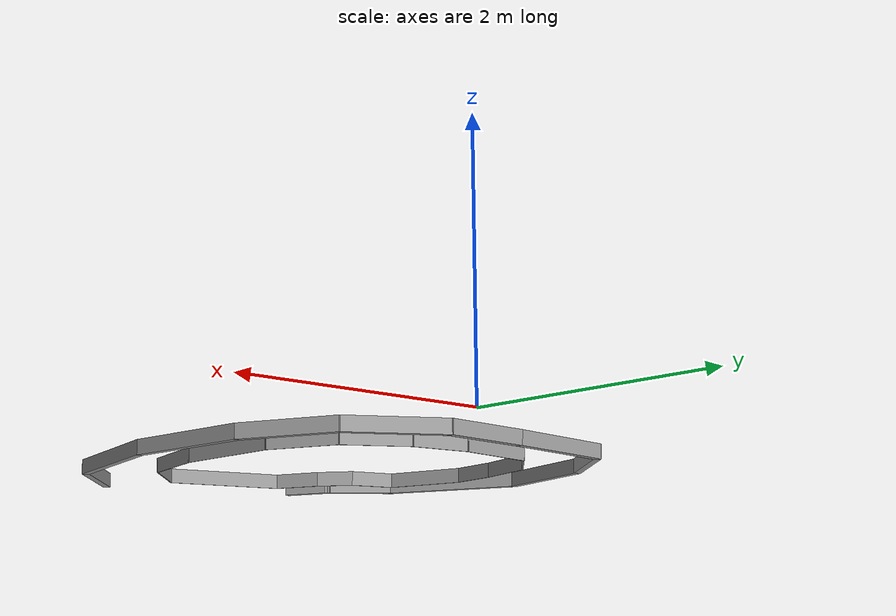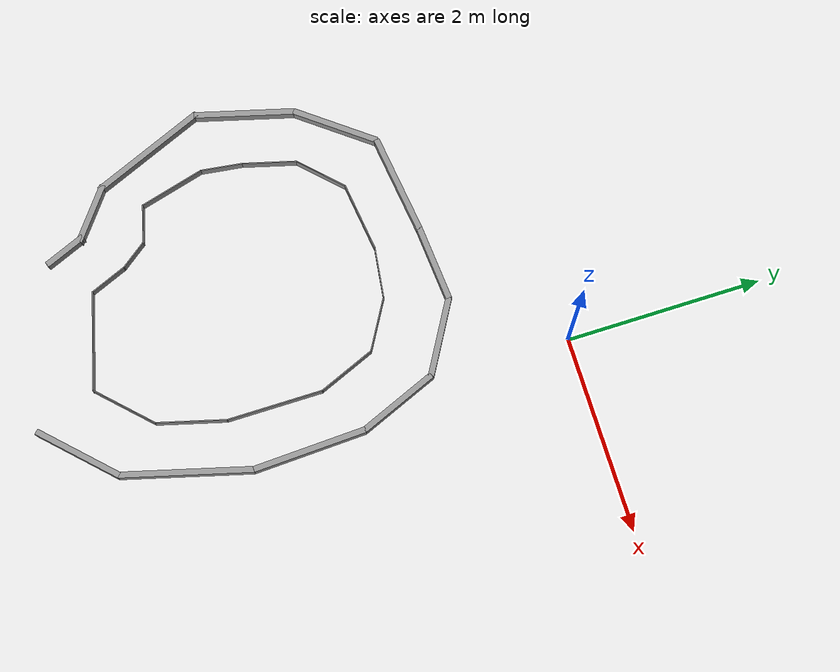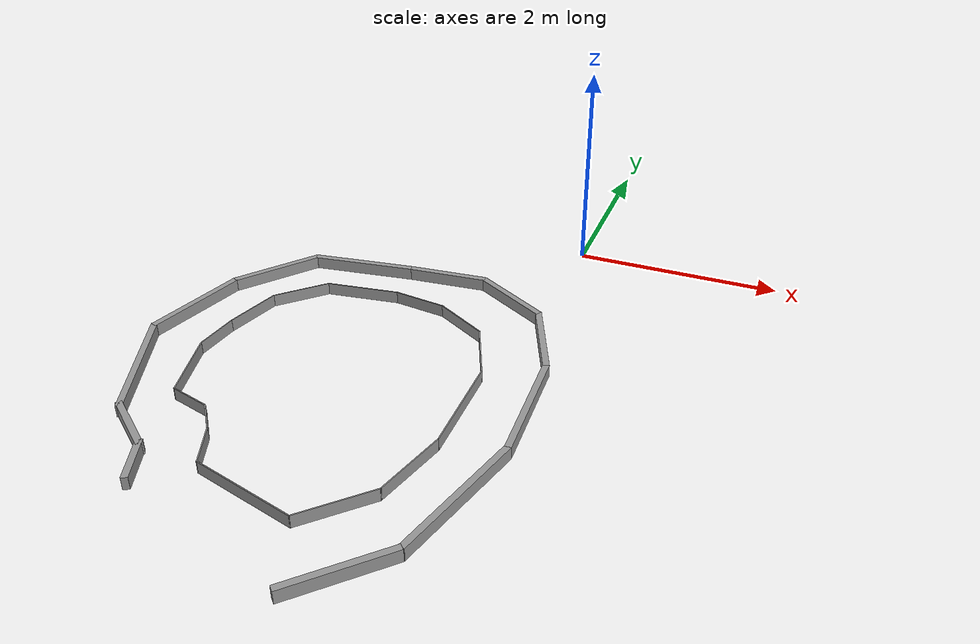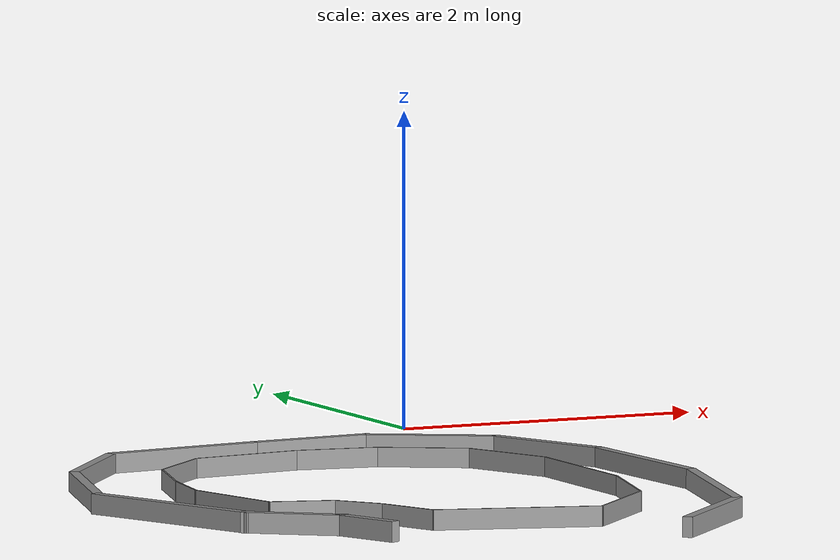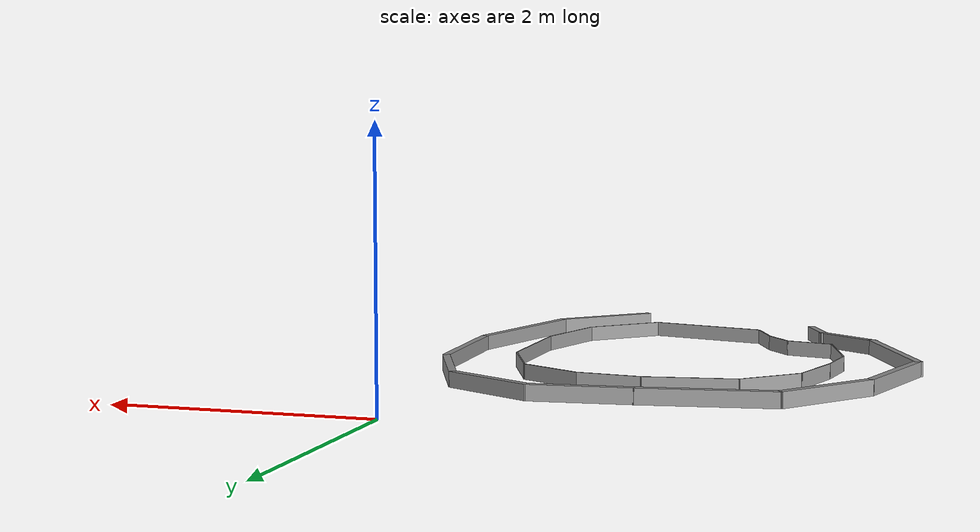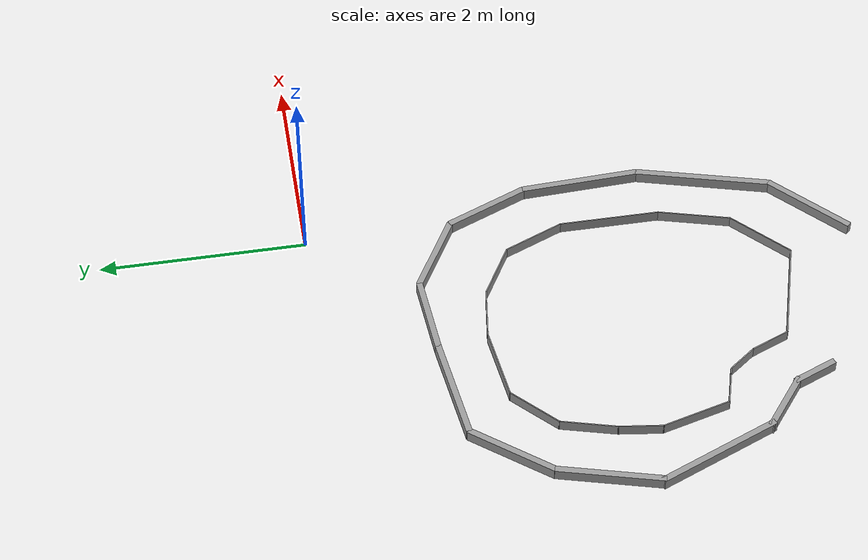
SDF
<?xml version='1.0'?>
<sdf version='1.4'>
  <model name='thymio_maze'>
    <link name='Wall_0'>
      <collision name='Wall_0_Collision'>
        <geometry>
          <box>
            <size>0.929348 0.06 0.12</size>
          </box>
        </geometry>
        <pose>0 0 0.06 0 -0 0</pose>
      </collision>
      <visual name='Wall_0_Visual'>
        <pose>0 0 0.06 0 -0 0</pose>
        <geometry>
          <box>
            <size>0.929348 0.06 0.12</size>
          </box>
        </geometry>
        <material>
          <script>
            <uri>file://media/materials/scripts/gazebo.material</uri>
            <name>Gazebo/Grey</name>
          </script>
        </material>
      </visual>
      <velocity_decay>
        <linear>0</linear>
        <angular>0</angular>
      </velocity_decay>
      <pose>-0.334962 -4.92496 0 0 -0 0.785398</pose>
    </link>
    <link name='Wall_1'>
      <collision name='Wall_1_Collision'>
        <geometry>
          <box>
            <size>1.32208 0.06 0.12</size>
          </box>
        </geometry>
        <pose>0 0 0.06 0 -0 0</pose>
      </collision>
      <visual name='Wall_1_Visual'>
        <pose>0 0 0.06 0 -0 0</pose>
        <geometry>
          <box>
            <size>1.32208 0.06 0.12</size>
          </box>
        </geometry>
        <material>
          <script>
            <uri>file://media/materials/scripts/gazebo.material</uri>
            <name>Gazebo/Grey</name>
          </script>
        </material>
      </visual>
      <velocity_decay>
        <linear>0</linear>
        <angular>0</angular>
      </velocity_decay>
      <pose>0.159873 -3.96624 0 0 -0 1.309</pose>
    </link>
    <link name='Wall_10'>
      <collision name='Wall_10_Collision'>
        <geometry>
          <box>
            <size>0.623976 0.06 0.12</size>
          </box>
        </geometry>
        <pose>0 0 0.06 0 -0 0</pose>
      </collision>
      <visual name='Wall_10_Visual'>
        <pose>0 0 0.06 0 -0 0</pose>
        <geometry>
          <box>
            <size>0.623976 0.06 0.12</size>
          </box>
        </geometry>
        <material>
          <script>
            <uri>file://media/materials/scripts/gazebo.material</uri>
            <name>Gazebo/Grey</name>
          </script>
        </material>
      </visual>
      <velocity_decay>
        <linear>0</linear>
        <angular>0</angular>
      </velocity_decay>
      <pose>-2.64026 -4.15809 0 0 0 -0.654498</pose>
    </link>
    <link name='Wall_11'>
      <collision name='Wall_11_Collision'>
        <geometry>
          <box>
            <size>0.448262 0.06 0.12</size>
          </box>
        </geometry>
        <pose>0 0 0.06 0 -0 0</pose>
      </collision>
      <visual name='Wall_11_Visual'>
        <pose>0 0 0.06 0 -0 0</pose>
        <geometry>
          <box>
            <size>0.448262 0.06 0.12</size>
          </box>
        </geometry>
        <material>
          <script>
            <uri>file://media/materials/scripts/gazebo.material</uri>
            <name>Gazebo/Grey</name>
          </script>
        </material>
      </visual>
      <velocity_decay>
        <linear>0</linear>
        <angular>0</angular>
      </velocity_decay>
      <pose>-2.34264 -4.50881 0 0 0 -1.1781</pose>
    </link>
    <link name='Wall_2'>
      <collision name='Wall_2_Collision'>
        <geometry>
          <box>
            <size>1.15363 0.06 0.12</size>
          </box>
        </geometry>
        <pose>0 0 0.06 0 -0 0</pose>
      </collision>
      <visual name='Wall_2_Visual'>
        <pose>0 0 0.06 0 -0 0</pose>
        <geometry>
          <box>
            <size>1.15363 0.06 0.12</size>
          </box>
        </geometry>
        <material>
          <script>
            <uri>file://media/materials/scripts/gazebo.material</uri>
            <name>Gazebo/Grey</name>
          </script>
        </material>
      </visual>
      <velocity_decay>
        <linear>0</linear>
        <angular>0</angular>
      </velocity_decay>
      <pose>0.304834 -2.76128 0 0 -0 1.61424</pose>
    </link>
    <link name='Wall_3'>
      <collision name='Wall_3_Collision'>
        <geometry>
          <box>
            <size>0.850952 0.06 0.12</size>
          </box>
        </geometry>
        <pose>0 0 0.06 0 -0 0</pose>
      </collision>
      <visual name='Wall_3_Visual'>
        <pose>0 0 0.06 0 -0 0</pose>
        <geometry>
          <box>
            <size>0.850952 0.06 0.12</size>
          </box>
        </geometry>
        <material>
          <script>
            <uri>file://media/materials/scripts/gazebo.material</uri>
            <name>Gazebo/Grey</name>
          </script>
        </material>
      </visual>
      <velocity_decay>
        <linear>0</linear>
        <angular>0</angular>
      </velocity_decay>
      <pose>0.119091 -1.80153 0 0 -0 1.96349</pose>
    </link>
    <link name='Wall_4'>
      <collision name='Wall_4_Collision'>
        <geometry>
          <box>
            <size>0.814735 0.06 0.12</size>
          </box>
        </geometry>
        <pose>0 0 0.06 0 -0 0</pose>
      </collision>
      <visual name='Wall_4_Visual'>
        <pose>0 0 0.06 0 -0 0</pose>
        <geometry>
          <box>
            <size>0.814735 0.06 0.12</size>
          </box>
        </geometry>
        <material>
          <script>
            <uri>file://media/materials/scripts/gazebo.material</uri>
            <name>Gazebo/Grey</name>
          </script>
        </material>
      </visual>
      <velocity_decay>
        <linear>0</linear>
        <angular>0</angular>
      </velocity_decay>
      <pose>-0.390279 -1.21188 0 0 -0 2.61799</pose>
    </link>
    <link name='Wall_42'>
      <collision name='Wall_42_Collision'>
        <geometry>
          <box>
            <size>0.707835 0.01 0.12</size>
          </box>
        </geometry>
        <pose>0 0 0.06 0 -0 0</pose>
      </collision>
      <visual name='Wall_42_Visual'>
        <pose>0 0 0.06 0 -0 0</pose>
        <geometry>
          <box>
            <size>0.707835 0.01 0.12</size>
          </box>
        </geometry>
        <material>
          <script>
            <uri>file://media/materials/scripts/gazebo.material</uri>
            <name>Gazebo/Grey</name>
          </script>
        </material>
      </visual>
      <velocity_decay>
        <linear>0</linear>
        <angular>0</angular>
      </velocity_decay>
      <pose>-0.645664 -4.37014 0 0 -0 0.785398</pose>
    </link>
    <link name='Wall_43'>
      <collision name='Wall_43_Collision'>
        <geometry>
          <box>
            <size>0.713337 0.01 0.12</size>
          </box>
        </geometry>
        <pose>0 0 0.06 0 -0 0</pose>
      </collision>
      <visual name='Wall_43_Visual'>
        <pose>0 0 0.06 0 -0 0</pose>
        <geometry>
          <box>
            <size>0.713337 0.01 0.12</size>
          </box>
        </geometry>
        <material>
          <script>
            <uri>file://media/materials/scripts/gazebo.material</uri>
            <name>Gazebo/Grey</name>
          </script>
        </material>
      </visual>
      <velocity_decay>
        <linear>0</linear>
        <angular>0</angular>
      </velocity_decay>
      <pose>-0.307923 -3.78373 0 0 -0 1.309</pose>
    </link>
    <link name='Wall_44'>
      <collision name='Wall_44_Collision'>
        <geometry>
          <box>
            <size>0.979475 0.01 0.12</size>
          </box>
        </geometry>
        <pose>0 0 0.06 0 -0 0</pose>
      </collision>
      <visual name='Wall_44_Visual'>
        <pose>0 0 0.06 0 -0 0</pose>
        <geometry>
          <box>
            <size>0.979475 0.01 0.12</size>
          </box>
        </geometry>
        <material>
          <script>
            <uri>file://media/materials/scripts/gazebo.material</uri>
            <name>Gazebo/Grey</name>
          </script>
        </material>
      </visual>
      <velocity_decay>
        <linear>0</linear>
        <angular>0</angular>
      </velocity_decay>
      <pose>-0.216905 -2.95931 0 0 -0 1.5708</pose>
    </link>
    <link name='Wall_45'>
      <collision name='Wall_45_Collision'>
        <geometry>
          <box>
            <size>0.627101 0.01 0.12</size>
          </box>
        </geometry>
        <pose>0 0 0.06 0 -0 0</pose>
      </collision>
      <visual name='Wall_45_Visual'>
        <pose>0 0 0.06 0 -0 0</pose>
        <geometry>
          <box>
            <size>0.627101 0.01 0.12</size>
          </box>
        </geometry>
        <material>
          <script>
            <uri>file://media/materials/scripts/gazebo.material</uri>
            <name>Gazebo/Grey</name>
          </script>
        </material>
      </visual>
      <velocity_decay>
        <linear>0</linear>
        <angular>0</angular>
      </velocity_decay>
      <pose>-0.334982 -2.18951 0 0 -0 1.96349</pose>
    </link>
    <link name='Wall_46'>
      <collision name='Wall_46_Collision'>
        <geometry>
          <box>
            <size>0.570732 0.01 0.12</size>
          </box>
        </geometry>
        <pose>0 0 0.06 0 -0 0</pose>
      </collision>
      <visual name='Wall_46_Visual'>
        <pose>0 0 0.06 0 -0 0</pose>
        <geometry>
          <box>
            <size>0.570732 0.01 0.12</size>
          </box>
        </geometry>
        <material>
          <script>
            <uri>file://media/materials/scripts/gazebo.material</uri>
            <name>Gazebo/Grey</name>
          </script>
        </material>
      </visual>
      <velocity_decay>
        <linear>0</linear>
        <angular>0</angular>
      </velocity_decay>
      <pose>-0.695863 -1.76426 0 0 -0 2.61799</pose>
    </link>
    <link name='Wall_47'>
      <collision name='Wall_47_Collision'>
        <geometry>
          <box>
            <size>0.521415 0.01 0.12</size>
          </box>
        </geometry>
        <pose>0 0 0.06 0 -0 0</pose>
      </collision>
      <visual name='Wall_47_Visual'>
        <pose>0 0 0.06 0 -0 0</pose>
        <geometry>
          <box>
            <size>0.521415 0.01 0.12</size>
          </box>
        </geometry>
        <material>
          <script>
            <uri>file://media/materials/scripts/gazebo.material</uri>
            <name>Gazebo/Grey</name>
          </script>
        </material>
      </visual>
      <velocity_decay>
        <linear>0</linear>
        <angular>0</angular>
      </velocity_decay>
      <pose>-1.19219 -1.5907 0 0 -0 3.01069</pose>
    </link>
    <link name='Wall_48'>
      <collision name='Wall_48_Collision'>
        <geometry>
          <box>
            <size>0.720722 0.01 0.12</size>
          </box>
        </geometry>
        <pose>0 0 0.06 0 -0 0</pose>
      </collision>
      <visual name='Wall_48_Visual'>
        <pose>0 0 0.06 0 -0 0</pose>
        <geometry>
          <box>
            <size>0.720722 0.01 0.12</size>
          </box>
        </geometry>
        <material>
          <script>
            <uri>file://media/materials/scripts/gazebo.material</uri>
            <name>Gazebo/Grey</name>
          </script>
        </material>
      </visual>
      <velocity_decay>
        <linear>0</linear>
        <angular>0</angular>
      </velocity_decay>
      <pose>-1.79833 -1.60374 0 0 0 -3.01069</pose>
    </link>
    <link name='Wall_49'>
      <collision name='Wall_49_Collision'>
        <geometry>
          <box>
            <size>0.56681 0.01 0.12</size>
          </box>
        </geometry>
        <pose>0 0 0.06 0 -0 0</pose>
      </collision>
      <visual name='Wall_49_Visual'>
        <pose>0 0 0.06 0 -0 0</pose>
        <geometry>
          <box>
            <size>0.56681 0.01 0.12</size>
          </box>
        </geometry>
        <material>
          <script>
            <uri>file://media/materials/scripts/gazebo.material</uri>
            <name>Gazebo/Grey</name>
          </script>
        </material>
      </visual>
      <velocity_decay>
        <linear>0</linear>
        <angular>0</angular>
      </velocity_decay>
      <pose>-2.34781 -1.84703 0 0 0 -2.35619</pose>
    </link>
    <link name='Wall_5'>
      <collision name='Wall_5_Collision'>
        <geometry>
          <box>
            <size>0.779264 0.06 0.12</size>
          </box>
        </geometry>
        <pose>0 0 0.06 0 -0 0</pose>
      </collision>
      <visual name='Wall_5_Visual'>
        <pose>0 0 0.06 0 -0 0</pose>
        <geometry>
          <box>
            <size>0.779264 0.06 0.12</size>
          </box>
        </geometry>
        <material>
          <script>
            <uri>file://media/materials/scripts/gazebo.material</uri>
            <name>Gazebo/Grey</name>
          </script>
        </material>
      </visual>
      <velocity_decay>
        <linear>0</linear>
        <angular>0</angular>
      </velocity_decay>
      <pose>-1.12207 -1.04224 0 0 0 -3.05947</pose>
    </link>
    <link name='Wall_50'>
      <collision name='Wall_50_Collision'>
        <geometry>
          <box>
            <size>0.555621 0.01 0.12</size>
          </box>
        </geometry>
        <pose>0 0 0.06 0 -0 0</pose>
      </collision>
      <visual name='Wall_50_Visual'>
        <pose>0 0 0.06 0 -0 0</pose>
        <geometry>
          <box>
            <size>0.555621 0.01 0.12</size>
          </box>
        </geometry>
        <material>
          <script>
            <uri>file://media/materials/scripts/gazebo.material</uri>
            <name>Gazebo/Grey</name>
          </script>
        </material>
      </visual>
      <velocity_decay>
        <linear>0</linear>
        <angular>0</angular>
      </velocity_decay>
      <pose>-2.61528 -2.30741 0 0 0 -1.8326</pose>
    </link>
    <link name='Wall_51'>
      <collision name='Wall_51_Collision'>
        <geometry>
          <box>
            <size>0.429008 0.01 0.12</size>
          </box>
        </geometry>
        <pose>0 0 0.06 0 -0 0</pose>
      </collision>
      <visual name='Wall_51_Visual'>
        <pose>0 0 0.06 0 -0 0</pose>
        <geometry>
          <box>
            <size>0.429008 0.01 0.12</size>
          </box>
        </geometry>
        <material>
          <script>
            <uri>file://media/materials/scripts/gazebo.material</uri>
            <name>Gazebo/Grey</name>
          </script>
        </material>
      </visual>
      <velocity_decay>
        <linear>0</linear>
        <angular>0</angular>
      </velocity_decay>
      <pose>-2.71323 -2.77863 0 0 0 -1.7017</pose>
    </link>
    <link name='Wall_52'>
      <collision name='Wall_52_Collision'>
        <geometry>
          <box>
            <size>0.690455 0.01 0.12</size>
          </box>
        </geometry>
        <pose>0 0 0.06 0 -0 0</pose>
      </collision>
      <visual name='Wall_52_Visual'>
        <pose>0 0 0.06 0 -0 0</pose>
        <geometry>
          <box>
            <size>0.690455 0.01 0.12</size>
          </box>
        </geometry>
        <material>
          <script>
            <uri>file://media/materials/scripts/gazebo.material</uri>
            <name>Gazebo/Grey</name>
          </script>
        </material>
      </visual>
      <velocity_decay>
        <linear>0</linear>
        <angular>0</angular>
      </velocity_decay>
      <pose>-2.65252 -3.31498 0 0 0 -1.309</pose>
    </link>
    <link name='Wall_53'>
      <collision name='Wall_53_Collision'>
        <geometry>
          <box>
            <size>0.396296 0.01 0.12</size>
          </box>
        </geometry>
        <pose>0 0 0.06 0 -0 0</pose>
      </collision>
      <visual name='Wall_53_Visual'>
        <pose>0 0 0.06 0 -0 0</pose>
        <geometry>
          <box>
            <size>0.396296 0.01 0.12</size>
          </box>
        </geometry>
        <material>
          <script>
            <uri>file://media/materials/scripts/gazebo.material</uri>
            <name>Gazebo/Grey</name>
          </script>
        </material>
      </visual>
      <velocity_decay>
        <linear>0</linear>
        <angular>0</angular>
      </velocity_decay>
      <pose>-2.3779 -3.6936 0 0 0 -0.261799</pose>
    </link>
    <link name='Wall_54'>
      <collision name='Wall_54_Collision'>
        <geometry>
          <box>
            <size>0.322851 0.01 0.12</size>
          </box>
        </geometry>
        <pose>0 0 0.06 0 -0 0</pose>
      </collision>
      <visual name='Wall_54_Visual'>
        <pose>0 0 0.06 0 -0 0</pose>
        <geometry>
          <box>
            <size>0.322851 0.01 0.12</size>
          </box>
        </geometry>
        <material>
          <script>
            <uri>file://media/materials/scripts/gazebo.material</uri>
            <name>Gazebo/Grey</name>
          </script>
        </material>
      </visual>
      <velocity_decay>
        <linear>0</linear>
        <angular>0</angular>
      </velocity_decay>
      <pose>-2.09743 -3.86814 0 0 0 -0.924784</pose>
    </link>
    <link name='Wall_55'>
      <collision name='Wall_55_Collision'>
        <geometry>
          <box>
            <size>0.407454 0.01 0.12</size>
          </box>
        </geometry>
        <pose>0 0 0.06 0 -0 0</pose>
      </collision>
      <visual name='Wall_55_Visual'>
        <pose>0 0 0.06 0 -0 0</pose>
        <geometry>
          <box>
            <size>0.407454 0.01 0.12</size>
          </box>
        </geometry>
        <material>
          <script>
            <uri>file://media/materials/scripts/gazebo.material</uri>
            <name>Gazebo/Grey</name>
          </script>
        </material>
      </visual>
      <velocity_decay>
        <linear>0</linear>
        <angular>0</angular>
      </velocity_decay>
      <pose>-1.92749 -4.17628 0 0 0 -1.1781</pose>
    </link>
    <link name='Wall_56'>
      <collision name='Wall_56_Collision'>
        <geometry>
          <box>
            <size>1.00289 0.01 0.12</size>
          </box>
        </geometry>
        <pose>0 0 0.06 0 -0 0</pose>
      </collision>
      <visual name='Wall_56_Visual'>
        <pose>0 0 0.06 0 -0 0</pose>
        <geometry>
          <box>
            <size>1.00289 0.01 0.12</size>
          </box>
        </geometry>
        <material>
          <script>
            <uri>file://media/materials/scripts/gazebo.material</uri>
            <name>Gazebo/Grey</name>
          </script>
        </material>
      </visual>
      <velocity_decay>
        <linear>0</linear>
        <angular>0</angular>
      </velocity_decay>
      <pose>-1.37191 -4.48837 0 0 0 -0.261799</pose>
    </link>
    <link name='Wall_6'>
      <collision name='Wall_6_Collision'>
        <geometry>
          <box>
            <size>1.03014 0.06 0.12</size>
          </box>
        </geometry>
        <pose>0 0 0.06 0 -0 0</pose>
      </collision>
      <visual name='Wall_6_Visual'>
        <pose>0 0 0.06 0 -0 0</pose>
        <geometry>
          <box>
            <size>1.03014 0.06 0.12</size>
          </box>
        </geometry>
        <material>
          <script>
            <uri>file://media/materials/scripts/gazebo.material</uri>
            <name>Gazebo/Grey</name>
          </script>
        </material>
      </visual>
      <velocity_decay>
        <linear>0</linear>
        <angular>0</angular>
      </velocity_decay>
      <pose>-2.01158 -1.14043 0 0 0 -3.01069</pose>
    </link>
    <link name='Wall_7'>
      <collision name='Wall_7_Collision'>
        <geometry>
          <box>
            <size>0.90175 0.06 0.12</size>
          </box>
        </geometry>
        <pose>0 0 0.06 0 -0 0</pose>
      </collision>
      <visual name='Wall_7_Visual'>
        <pose>0 0 0.06 0 -0 0</pose>
        <geometry>
          <box>
            <size>0.90175 0.06 0.12</size>
          </box>
        </geometry>
        <material>
          <script>
            <uri>file://media/materials/scripts/gazebo.material</uri>
            <name>Gazebo/Grey</name>
          </script>
        </material>
      </visual>
      <velocity_decay>
        <linear>0</linear>
        <angular>0</angular>
      </velocity_decay>
      <pose>-2.78918 -1.56081 0 0 0 -2.2253</pose>
    </link>
    <link name='Wall_8'>
      <collision name='Wall_8_Collision'>
        <geometry>
          <box>
            <size>1.02039 0.06 0.12</size>
          </box>
        </geometry>
        <pose>0 0 0.06 0 -0 0</pose>
      </collision>
      <visual name='Wall_8_Visual'>
        <pose>0 0 0.06 0 -0 0</pose>
        <geometry>
          <box>
            <size>1.02039 0.06 0.12</size>
          </box>
        </geometry>
        <material>
          <script>
            <uri>file://media/materials/scripts/gazebo.material</uri>
            <name>Gazebo/Grey</name>
          </script>
        </material>
      </visual>
      <velocity_decay>
        <linear>0</linear>
        <angular>0</angular>
      </velocity_decay>
      <pose>-3.19137 -2.40253 0 0 0 -1.8326</pose>
    </link>
    <link name='Wall_9'>
      <collision name='Wall_9_Collision'>
        <geometry>
          <box>
            <size>1.24741 0.06 0.12</size>
          </box>
        </geometry>
        <pose>0 0 0.06 0 -0 0</pose>
      </collision>
      <visual name='Wall_9_Visual'>
        <pose>0 0 0.06 0 -0 0</pose>
        <geometry>
          <box>
            <size>1.24741 0.06 0.12</size>
          </box>
        </geometry>
        <material>
          <script>
            <uri>file://media/materials/scripts/gazebo.material</uri>
            <name>Gazebo/Grey</name>
          </script>
        </material>
      </visual>
      <velocity_decay>
        <linear>0</linear>
        <angular>0</angular>
      </velocity_decay>
      <pose>-3.09286 -3.43862 0 0 0 -1.17463</pose>
    </link>
    <static>1</static>
  </model>
</sdf>
